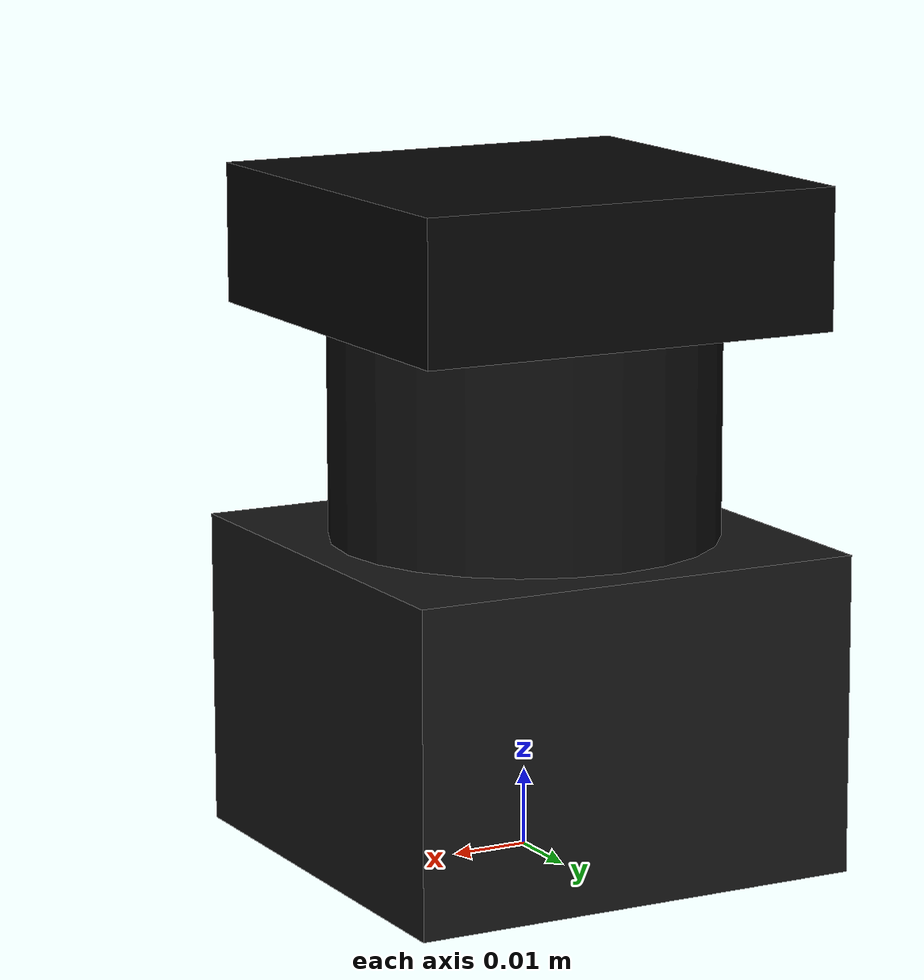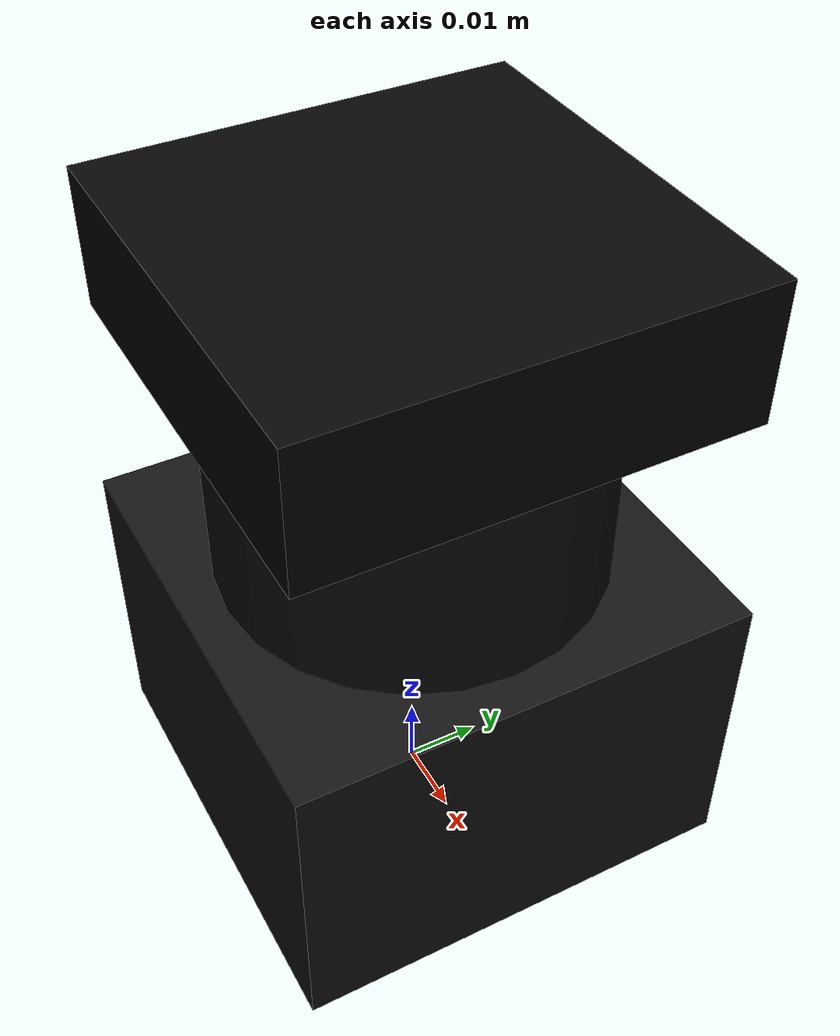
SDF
<?xml version="1.0"?>
<sdf version="1.9">
  <model name="lidar_3d">
    <link name="lidar_link">
      <pose>0 0 0 0 0 0</pose>
      <inertial>
        <pose>0 0 0.0435 0 0 0</pose>
        <mass>0.37</mass>
        <inertia>
          <ixx>0.0003443775</ixx>
          <ixy>0</ixy>
          <ixz>0</ixz>
          <iyy>0.0003443775</iyy>
          <iyz>0</iyz>
          <izz>0.000222</izz>
        </inertia>
      </inertial>
      <collision name="collision_base">
        <pose>0 0 0.0205 0 0 0</pose>
        <geometry>
          <box>
            <size>0.06 0.06 0.041</size>
          </box>
        </geometry>
      </collision>
      <collision name="collision_mid">
        <pose>0 0 0.055 0 0 0</pose>
        <geometry>
          <cylinder>
            <radius>0.025</radius>
            <length>0.028</length>
          </cylinder>
        </geometry>
      </collision>
      <collision name="collision_top">
        <pose>0 0 0.078 0 0 0</pose>
        <geometry>
          <box>
            <size>0.056 0.056 0.018</size>
          </box>
        </geometry>
      </collision>
      <visual name="visual_base">
        <pose>0 0 0.0205 0 0 0</pose>
        <geometry>
          <box>
            <size>0.06 0.06 0.041</size>
          </box>
        </geometry>
        <visibility_flags>33554432</visibility_flags>
        <material>
          <diffuse>0.08 0.08 0.08 1</diffuse>
        </material>
      </visual>
      <visual name="visual_mid">
        <pose>0 0 0.055 0 0 0</pose>
        <geometry>
          <cylinder>
            <radius>0.025</radius>
            <length>0.028</length>
          </cylinder>
        </geometry>
        <visibility_flags>33554432</visibility_flags>
        <material>
          <diffuse>0.05 0.05 0.05 1</diffuse>
        </material>
      </visual>
      <visual name="visual_top">
        <pose>0 0 0.078 0 0 0</pose>
        <geometry>
          <box>
            <size>0.056 0.056 0.018</size>
          </box>
        </geometry>
        <visibility_flags>33554432</visibility_flags>
        <material>
          <diffuse>0.02 0.02 0.02 1</diffuse>
        </material>
      </visual>
      <sensor name="lidar_3d" type="gpu_lidar">
        <gz_frame_id>lidar_link</gz_frame_id>
        <topic>lidar_3d</topic>
        <pose>0 0 0.055 0 0 0</pose>
        <ray>
          <scan>
            <horizontal>
              <!-- 1 deg columns and rows (360 x 181 = 65k rays at 10 Hz) -->
              <samples>360</samples>
              <resolution>1</resolution>
              <min_angle>-3.141592653589793</min_angle>
              <max_angle>3.141592653589793</max_angle>
            </horizontal>
            <vertical>
              <samples>181</samples>
              <resolution>1</resolution>
              <min_angle>-1.5707963267948966</min_angle>
              <max_angle>1.5707963267948966</max_angle>
            </vertical>
          </scan>
          <range>
            <min>0.2</min>
            <max>35</max>
            <resolution>0.02</resolution>
          </range>
          <noise>
            <type>gaussian</type>
            <mean>0.0</mean>
            <stddev>0.001</stddev>
          </noise>
          <!-- everything except the airframe's own visuals (visibility_flags 33554432) -->
          <visibility_mask>33554431</visibility_mask>
        </ray>
        <always_on>true</always_on>
        <update_rate>10</update_rate>
        <visualize>false</visualize>
      </sensor>
    </link>
  </model>
</sdf>
